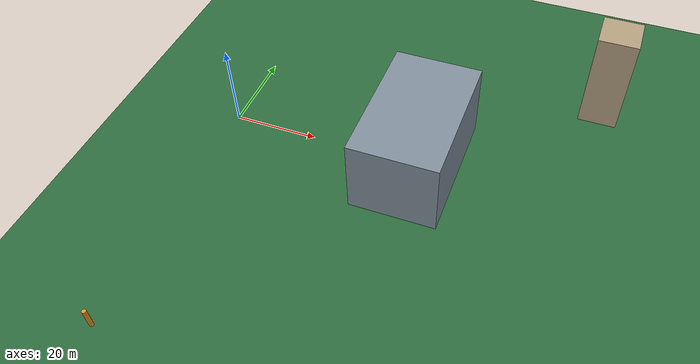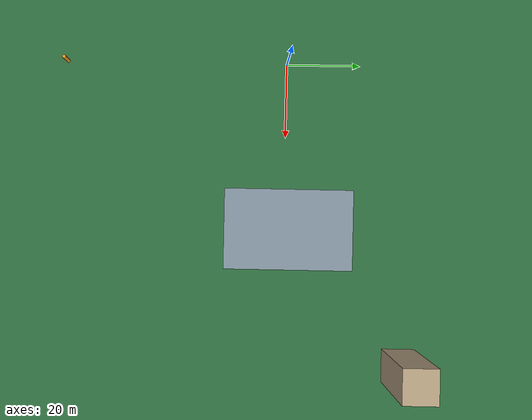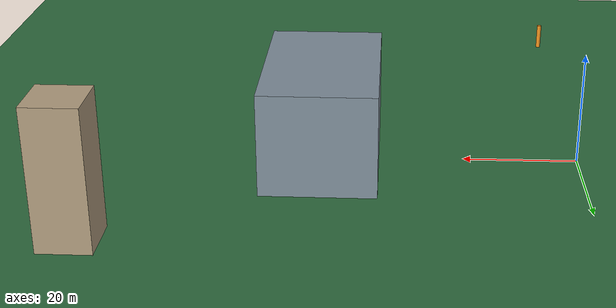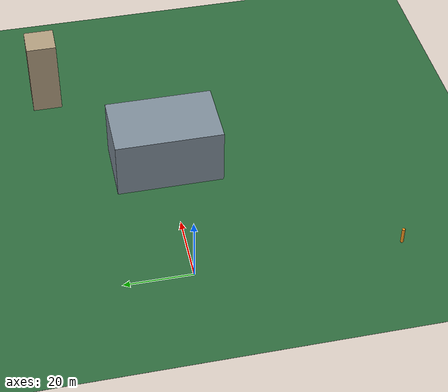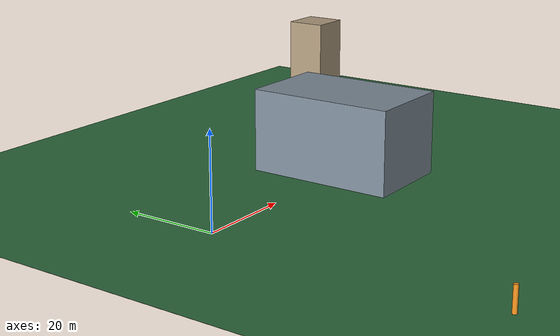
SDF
<sdf version="1.9">
 <world name="iris_runway_rf_demo">
  <physics name="1ms" type="ignore">
   <max_step_size>0.001</max_step_size>
   <real_time_factor>1.0</real_time_factor>
  </physics>
  <plugin filename="gz-sim-physics-system" name="gz::sim::systems::Physics"/>
  <plugin filename="gz-sim-sensors-system" name="gz::sim::systems::Sensors">
   <render_engine>ogre2</render_engine>
  </plugin>
  <plugin filename="gz-sim-user-commands-system" name="gz::sim::systems::UserCommands"/>
  <plugin filename="gz-sim-scene-broadcaster-system" name="gz::sim::systems::SceneBroadcaster"/>
  <plugin filename="gz-sim-imu-system" name="gz::sim::systems::Imu"/>
  <plugin filename="gz-sim-navsat-system" name="gz::sim::systems::NavSat"/>
  <scene><ambient>0.92 0.94 0.96</ambient><background>0.72 0.82 0.92</background></scene>
  <spherical_coordinates>
   <latitude_deg>-35.363262</latitude_deg>
   <longitude_deg>149.165237</longitude_deg>
   <elevation>584</elevation>
   <heading_deg>0</heading_deg>
   <surface_model>EARTH_WGS84</surface_model>
  </spherical_coordinates>
  <light type="directional" name="sun">
   <pose>0 0 10 0 0 0</pose>
   <diffuse>0.82 0.82 0.80 1</diffuse>
   <specular>0.55 0.55 0.55 1</specular>
   <attenuation>
    <range>1200</range>
    <constant>0.9</constant>
    <linear>0.01</linear>
    <quadratic>0.001</quadratic>
   </attenuation>
   <direction>-0.45 0.18 -0.88</direction>
  </light>
  <model name="rf_demo_ground">
   <static>true</static>
   <link name="link">
    <visual name="field">
     <pose>180 0 -0.03 0 0 0</pose>
     <geometry><box><size>420 220 0.04</size></box></geometry>
     <material><ambient>0.15 0.36 0.20 1</ambient><diffuse>0.18 0.42 0.24 1</diffuse></material>
    </visual>
   </link>
  </model>
  <model name="rf_hangar_blocker">
   <static>true</static>
   <pose>45 0 9 0 0 0</pose>
   <link name="link">
    <collision name="collision"><geometry><box><size>20 32 18</size></box></geometry></collision>
    <visual name="visual">
     <geometry><box><size>20 32 18</size></box></geometry>
     <material>
      <ambient>0.50 0.56 0.61 1</ambient>
      <diffuse>0.50 0.56 0.61 1</diffuse>
      <specular>0.12 0.12 0.12 1</specular>
     </material>
    </visual>
   </link>
  </model>
  <model name="rf_control_tower">
   <static>true</static>
   <pose>82 32 12 0 0 0</pose>
   <link name="link">
    <collision name="collision"><geometry><box><size>9 9 24</size></box></geometry></collision>
    <visual name="visual">
     <geometry><box><size>9 9 24</size></box></geometry>
     <material><ambient>0.68 0.60 0.48 1</ambient><diffuse>0.70 0.62 0.50 1</diffuse></material>
    </visual>
   </link>
  </model>
  <model name="rf_gcs_mast">
   <static>true</static>
   <pose>0 -60 2.5 0 0 0</pose>
   <link name="link">
    <visual name="mast">
     <geometry><cylinder><radius>0.45</radius><length>5</length></cylinder></geometry>
     <material>
      <ambient>0.95 0.58 0.12 1</ambient>
      <diffuse>0.95 0.58 0.12 1</diffuse>
      <emissive>0.20 0.08 0.00 1</emissive>
     </material>
    </visual>
   </link>
  </model>
 </world>
</sdf>
